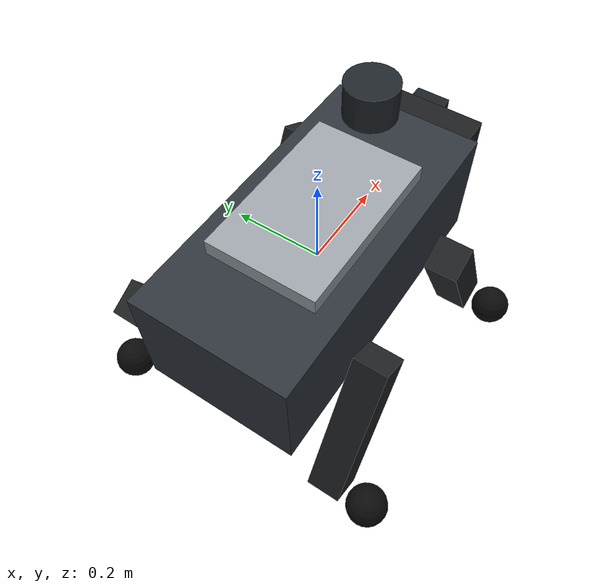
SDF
<?xml version='1.0'?>
<sdf version='1.6'>
  <model name='__MODEL_NAME__'>
    <!-- Navigation-level proxy: no gait dynamics; pose is updated by go2_kinematic_controller.py. -->
    <static>false</static>
    <allow_auto_disable>false</allow_auto_disable>

    <link name='base_link'>
      <gravity>false</gravity>
      <self_collide>false</self_collide>
      <kinematic>true</kinematic>
      <inertial><mass>12.0</mass><inertia><ixx>0.28</ixx><iyy>0.46</iyy><izz>0.52</izz></inertia></inertial>
      <!-- Body envelope approximately follows Unitree Go2 proportions. -->
      <collision name='body_collision'><pose>0 0 0 0 0 0</pose><geometry><box><size>0.70 0.34 0.25</size></box></geometry></collision>
      <visual name='body_visual'><pose>0 0 0 0 0 0</pose><geometry><box><size>0.70 0.34 0.25</size></box></geometry><material><ambient>0.10 0.12 0.14 1</ambient><diffuse>0.18 0.20 0.23 1</diffuse><specular>0.25 0.25 0.25 1</specular></material></visual>
      <visual name='head_visual'><pose>0.39 0 0.01 0 0 0</pose><geometry><box><size>0.12 0.28 0.16</size></box></geometry><material><ambient>0.06 0.07 0.08 1</ambient><diffuse>0.10 0.11 0.12 1</diffuse></material></visual>
      <visual name='top_panel'><pose>0 0 0.14 0 0 0</pose><geometry><box><size>0.38 0.24 0.04</size></box></geometry><material><ambient>0.55 0.57 0.60 1</ambient><diffuse>0.60 0.62 0.65 1</diffuse></material></visual>
      <!-- Stylized legs: visual envelope only, appropriate for a navigation-level model. -->
      <visual name='leg_fl_upper'><pose>0.22 0.23 -0.15 0 0.48 0</pose><geometry><box><size>0.075 0.075 0.34</size></box></geometry><material><ambient>0.08 0.09 0.10 1</ambient><diffuse>0.12 0.13 0.14 1</diffuse></material></visual>
      <visual name='leg_fr_upper'><pose>0.22 -0.23 -0.15 0 -0.48 0</pose><geometry><box><size>0.075 0.075 0.34</size></box></geometry><material><ambient>0.08 0.09 0.10 1</ambient><diffuse>0.12 0.13 0.14 1</diffuse></material></visual>
      <visual name='leg_rl_upper'><pose>-0.22 0.23 -0.15 0 -0.48 0</pose><geometry><box><size>0.075 0.075 0.34</size></box></geometry><material><ambient>0.08 0.09 0.10 1</ambient><diffuse>0.12 0.13 0.14 1</diffuse></material></visual>
      <visual name='leg_rr_upper'><pose>-0.22 -0.23 -0.15 0 0.48 0</pose><geometry><box><size>0.075 0.075 0.34</size></box></geometry><material><ambient>0.08 0.09 0.10 1</ambient><diffuse>0.12 0.13 0.14 1</diffuse></material></visual>
      <visual name='foot_fl'><pose>0.30 0.32 -0.30 0 0 0</pose><geometry><sphere><radius>0.045</radius></sphere></geometry><material><ambient>0.04 0.04 0.04 1</ambient></material></visual>
      <visual name='foot_fr'><pose>0.30 -0.32 -0.30 0 0 0</pose><geometry><sphere><radius>0.045</radius></sphere></geometry><material><ambient>0.04 0.04 0.04 1</ambient></material></visual>
      <visual name='foot_rl'><pose>-0.30 0.32 -0.30 0 0 0</pose><geometry><sphere><radius>0.045</radius></sphere></geometry><material><ambient>0.04 0.04 0.04 1</ambient></material></visual>
      <visual name='foot_rr'><pose>-0.30 -0.32 -0.30 0 0 0</pose><geometry><sphere><radius>0.045</radius></sphere></geometry><material><ambient>0.04 0.04 0.04 1</ambient></material></visual>
    </link>

    <link name='lidar_link'>
      <pose>0.18 0 0.28 0 0 0</pose>
      <gravity>false</gravity>
      <inertial><mass>0.05</mass><inertia><ixx>0.0001</ixx><iyy>0.0001</iyy><izz>0.0001</izz></inertia></inertial>
      <visual name='lidar_visual'><geometry><cylinder><radius>0.055</radius><length>0.075</length></cylinder></geometry><material><ambient>0.06 0.07 0.08 1</ambient><diffuse>0.12 0.14 0.16 1</diffuse></material></visual>
      <sensor name='go2_ground_3d_lidar' type='ray'>
        <always_on>1</always_on><visualize>false</visualize><update_rate>10</update_rate>
        <ray><scan><horizontal><samples>720</samples><resolution>1</resolution><min_angle>-3.1415926</min_angle><max_angle>3.1415926</max_angle></horizontal><vertical><samples>16</samples><resolution>1</resolution><min_angle>-0.6108652</min_angle><max_angle>0.3490659</max_angle></vertical></scan><range><min>0.18</min><max>12.0</max><resolution>0.02</resolution></range></ray>
        <plugin name='go2_ground_ros_lidar' filename='libgazebo_ros_velodyne_laser.so'>
          <robotNamespace>__ROBOT_NAMESPACE__</robotNamespace><topicName>lidar/points</topicName><frameName>__ROBOT_NAME__/lidar_link</frameName>
          <min_range>0.18</min_range><max_range>12.0</max_range><gaussianNoise>0.005</gaussianNoise>
        </plugin>
      </sensor>
    </link>
    <joint name='lidar_joint' type='fixed'><parent>base_link</parent><child>lidar_link</child></joint>

    <link name='front_camera_link'>
      <pose>0.42 0 0.05 0 0 0</pose>
      <gravity>false</gravity>
      <inertial><mass>0.06</mass><inertia><ixx>0.0002</ixx><iyy>0.0002</iyy><izz>0.0002</izz></inertia></inertial>
      <visual name='front_camera_housing'>
        <pose>0.02 0 0 0 0 0</pose>
        <geometry><box><size>0.10 0.08 0.06</size></box></geometry>
        <material><ambient>0.04 0.05 0.06 1</ambient><diffuse>0.10 0.12 0.14 1</diffuse></material>
      </visual>
      <sensor name='go2_front_rgbd' type='depth'>
        <always_on>1</always_on><visualize>false</visualize><update_rate>15</update_rate>
        <camera>
          <horizontal_fov>1.3962634</horizontal_fov>
          <image><width>640</width><height>480</height><format>R8G8B8</format></image>
          <clip><near>0.25</near><far>8.0</far></clip>
        </camera>
        <!-- The nested topic form deliberately matches the already-tested UAV
             OpenNI/Kinect configuration in patch_px4_gazebo.py. -->
        <plugin name='go2_front_ros_rgbd' filename='libgazebo_ros_openni_kinect.so'>
          <robotNamespace>__ROBOT_NAMESPACE__</robotNamespace>
          <cameraName>camera</cameraName>
          <alwaysOn>true</alwaysOn><updateRate>15.0</updateRate>
          <imageTopicName>camera/rgb/image_raw</imageTopicName>
          <cameraInfoTopicName>camera/rgb/camera_info</cameraInfoTopicName>
          <depthImageTopicName>camera/depth/image_raw</depthImageTopicName>
          <depthImageCameraInfoTopicName>camera/depth/camera_info</depthImageCameraInfoTopicName>
          <pointCloudTopicName>camera/depth/points</pointCloudTopicName>
          <frameName>__ROBOT_NAME__/front_camera_link</frameName>
          <pointCloudCutoff>0.25</pointCloudCutoff>
          <pointCloudCutoffMax>8.0</pointCloudCutoffMax>
        </plugin>
      </sensor>
    </link>
    <joint name='front_camera_joint' type='fixed'><parent>base_link</parent><child>front_camera_link</child></joint>
  </model>
</sdf><?xml version='1.0'?>
<sdf version='1.6'>
  <model name='__MODEL_NAME__'>
    <!-- Navigation-level proxy: no gait dynamics; pose is updated by go2_kinematic_controller.py. -->
    <static>false</static>
    <allow_auto_disable>false</allow_auto_disable>

    <link name='base_link'>
      <gravity>false</gravity>
      <self_collide>false</self_collide>
      <kinematic>true</kinematic>
      <inertial><mass>12.0</mass><inertia><ixx>0.28</ixx><iyy>0.46</iyy><izz>0.52</izz></inertia></inertial>
      <!-- Body envelope approximately follows Unitree Go2 proportions. -->
      <collision name='body_collision'><pose>0 0 0 0 0 0</pose><geometry><box><size>0.70 0.34 0.25</size></box></geometry></collision>
      <visual name='body_visual'><pose>0 0 0 0 0 0</pose><geometry><box><size>0.70 0.34 0.25</size></box></geometry><material><ambient>0.10 0.12 0.14 1</ambient><diffuse>0.18 0.20 0.23 1</diffuse><specular>0.25 0.25 0.25 1</specular></material></visual>
      <visual name='head_visual'><pose>0.39 0 0.01 0 0 0</pose><geometry><box><size>0.12 0.28 0.16</size></box></geometry><material><ambient>0.06 0.07 0.08 1</ambient><diffuse>0.10 0.11 0.12 1</diffuse></material></visual>
      <visual name='top_panel'><pose>0 0 0.14 0 0 0</pose><geometry><box><size>0.38 0.24 0.04</size></box></geometry><material><ambient>0.55 0.57 0.60 1</ambient><diffuse>0.60 0.62 0.65 1</diffuse></material></visual>
      <!-- Stylized legs: visual envelope only, appropriate for a navigation-level model. -->
      <visual name='leg_fl_upper'><pose>0.22 0.23 -0.15 0 0.48 0</pose><geometry><box><size>0.075 0.075 0.34</size></box></geometry><material><ambient>0.08 0.09 0.10 1</ambient><diffuse>0.12 0.13 0.14 1</diffuse></material></visual>
      <visual name='leg_fr_upper'><pose>0.22 -0.23 -0.15 0 -0.48 0</pose><geometry><box><size>0.075 0.075 0.34</size></box></geometry><material><ambient>0.08 0.09 0.10 1</ambient><diffuse>0.12 0.13 0.14 1</diffuse></material></visual>
      <visual name='leg_rl_upper'><pose>-0.22 0.23 -0.15 0 -0.48 0</pose><geometry><box><size>0.075 0.075 0.34</size></box></geometry><material><ambient>0.08 0.09 0.10 1</ambient><diffuse>0.12 0.13 0.14 1</diffuse></material></visual>
      <visual name='leg_rr_upper'><pose>-0.22 -0.23 -0.15 0 0.48 0</pose><geometry><box><size>0.075 0.075 0.34</size></box></geometry><material><ambient>0.08 0.09 0.10 1</ambient><diffuse>0.12 0.13 0.14 1</diffuse></material></visual>
      <visual name='foot_fl'><pose>0.30 0.32 -0.30 0 0 0</pose><geometry><sphere><radius>0.045</radius></sphere></geometry><material><ambient>0.04 0.04 0.04 1</ambient></material></visual>
      <visual name='foot_fr'><pose>0.30 -0.32 -0.30 0 0 0</pose><geometry><sphere><radius>0.045</radius></sphere></geometry><material><ambient>0.04 0.04 0.04 1</ambient></material></visual>
      <visual name='foot_rl'><pose>-0.30 0.32 -0.30 0 0 0</pose><geometry><sphere><radius>0.045</radius></sphere></geometry><material><ambient>0.04 0.04 0.04 1</ambient></material></visual>
      <visual name='foot_rr'><pose>-0.30 -0.32 -0.30 0 0 0</pose><geometry><sphere><radius>0.045</radius></sphere></geometry><material><ambient>0.04 0.04 0.04 1</ambient></material></visual>
    </link>

    <link name='lidar_link'>
      <pose>0.18 0 0.28 0 0 0</pose>
      <gravity>false</gravity>
      <inertial><mass>0.05</mass><inertia><ixx>0.0001</ixx><iyy>0.0001</iyy><izz>0.0001</izz></inertia></inertial>
      <visual name='lidar_visual'><geometry><cylinder><radius>0.055</radius><length>0.075</length></cylinder></geometry><material><ambient>0.06 0.07 0.08 1</ambient><diffuse>0.12 0.14 0.16 1</diffuse></material></visual>
      <sensor name='go2_ground_3d_lidar' type='ray'>
        <always_on>1</always_on><visualize>false</visualize><update_rate>10</update_rate>
        <ray><scan><horizontal><samples>720</samples><resolution>1</resolution><min_angle>-3.1415926</min_angle><max_angle>3.1415926</max_angle></horizontal><vertical><samples>16</samples><resolution>1</resolution><min_angle>-0.6108652</min_angle><max_angle>0.3490659</max_angle></vertical></scan><range><min>0.18</min><max>12.0</max><resolution>0.02</resolution></range></ray>
        <plugin name='go2_ground_ros_lidar' filename='libgazebo_ros_velodyne_laser.so'>
          <robotNamespace>__ROBOT_NAMESPACE__</robotNamespace><topicName>lidar/points</topicName><frameName>__ROBOT_NAME__/lidar_link</frameName>
          <min_range>0.18</min_range><max_range>12.0</max_range><gaussianNoise>0.005</gaussianNoise>
        </plugin>
      </sensor>
    </link>
    <joint name='lidar_joint' type='fixed'><parent>base_link</parent><child>lidar_link</child></joint>

    <link name='front_camera_link'>
      <pose>0.42 0 0.05 0 0 0</pose>
      <gravity>false</gravity>
      <inertial><mass>0.06</mass><inertia><ixx>0.0002</ixx><iyy>0.0002</iyy><izz>0.0002</izz></inertia></inertial>
      <visual name='front_camera_housing'>
        <pose>0.02 0 0 0 0 0</pose>
        <geometry><box><size>0.10 0.08 0.06</size></box></geometry>
        <material><ambient>0.04 0.05 0.06 1</ambient><diffuse>0.10 0.12 0.14 1</diffuse></material>
      </visual>
      <sensor name='go2_front_rgbd' type='depth'>
        <always_on>1</always_on><visualize>false</visualize><update_rate>15</update_rate>
        <camera>
          <horizontal_fov>1.3962634</horizontal_fov>
          <image><width>640</width><height>480</height><format>R8G8B8</format></image>
          <clip><near>0.25</near><far>8.0</far></clip>
        </camera>
        <!-- The nested topic form deliberately matches the already-tested UAV
             OpenNI/Kinect configuration in patch_px4_gazebo.py. -->
        <plugin name='go2_front_ros_rgbd' filename='libgazebo_ros_openni_kinect.so'>
          <robotNamespace>__ROBOT_NAMESPACE__</robotNamespace>
          <cameraName>camera</cameraName>
          <alwaysOn>true</alwaysOn><updateRate>15.0</updateRate>
          <imageTopicName>camera/rgb/image_raw</imageTopicName>
          <cameraInfoTopicName>camera/rgb/camera_info</cameraInfoTopicName>
          <depthImageTopicName>camera/depth/image_raw</depthImageTopicName>
          <depthImageCameraInfoTopicName>camera/depth/camera_info</depthImageCameraInfoTopicName>
          <pointCloudTopicName>camera/depth/points</pointCloudTopicName>
          <frameName>__ROBOT_NAME__/front_camera_link</frameName>
          <pointCloudCutoff>0.25</pointCloudCutoff>
          <pointCloudCutoffMax>8.0</pointCloudCutoffMax>
        </plugin>
      </sensor>
    </link>
    <joint name='front_camera_joint' type='fixed'><parent>base_link</parent><child>front_camera_link</child></joint>
  </model>
</sdf>
